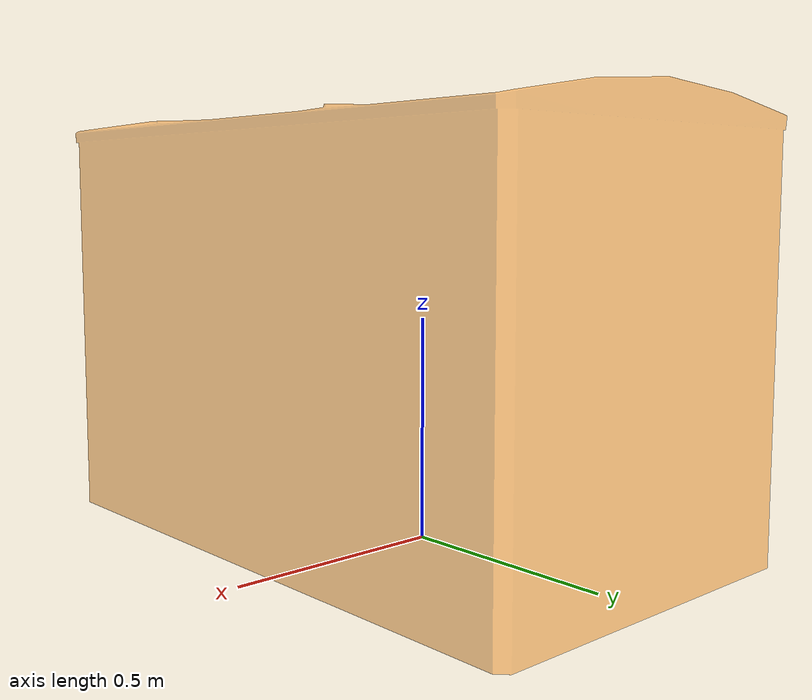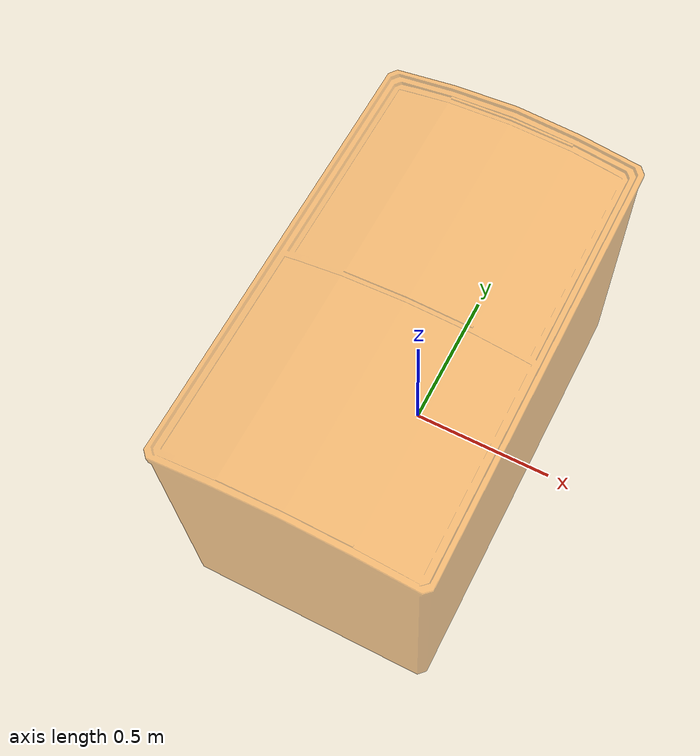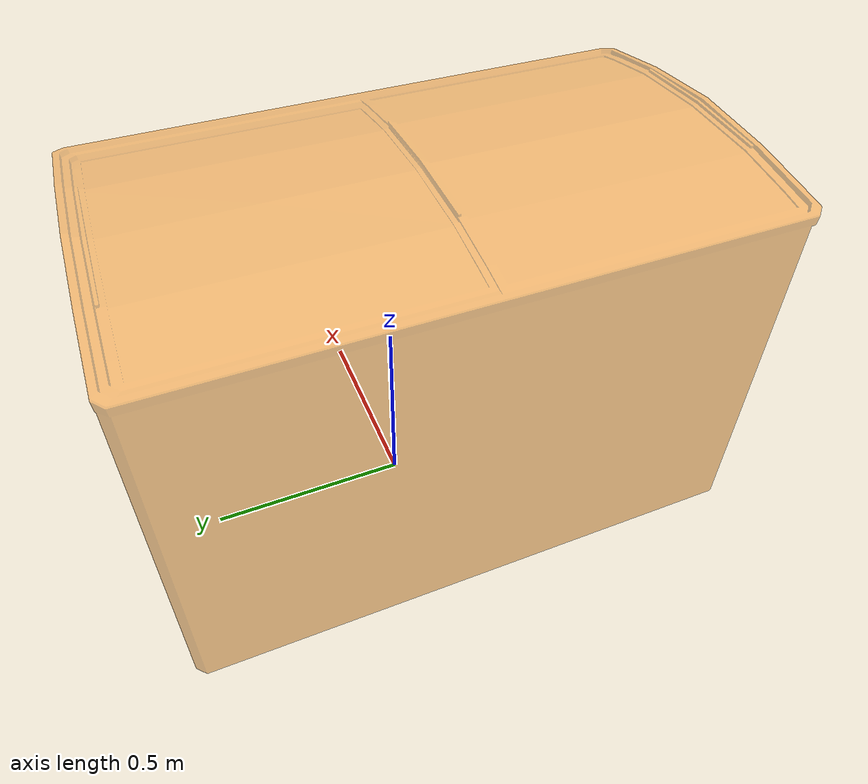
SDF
<?xml version="1.0" ?>
<sdf version="1.5">
  <model name="freezer">

    <pose>0 0 0  0 0 0</pose>

    <static>true</static>
    <link name="link">
      <inertial>
        <mass>50</mass>
        <inertia>
          <ixx>1</ixx>
          <ixy>0</ixy>
          <ixz>0</ixz>
          <iyy>1</iyy>
          <iyz>0</iyz>
          <izz>1</izz>
        </inertia>
      </inertial>

      <collision name="collision">
	    <pose>0 0 0  0 0 0</pose>
        <geometry>
          <mesh>
            <uri>model://freezer/meshes/freezer.STL</uri>
          </mesh>
        </geometry>
      </collision>

      <visual name="visual">
        <geometry>
          <mesh>
            <uri>model://freezer/meshes/freezer.STL</uri>
          </mesh>
        </geometry>
        <material>
           <script>
  <name>Gazebo/OrangeTransparent</name>
  </script>
        </material>
      </visual>
    </link>
  </model>
</sdf>
